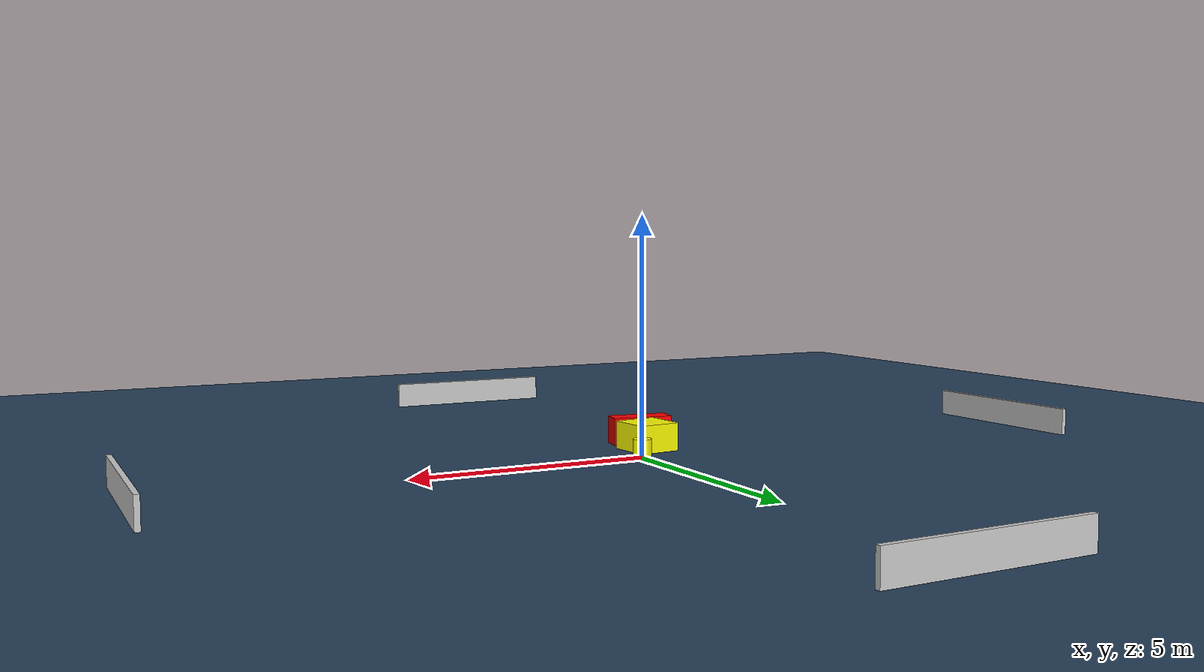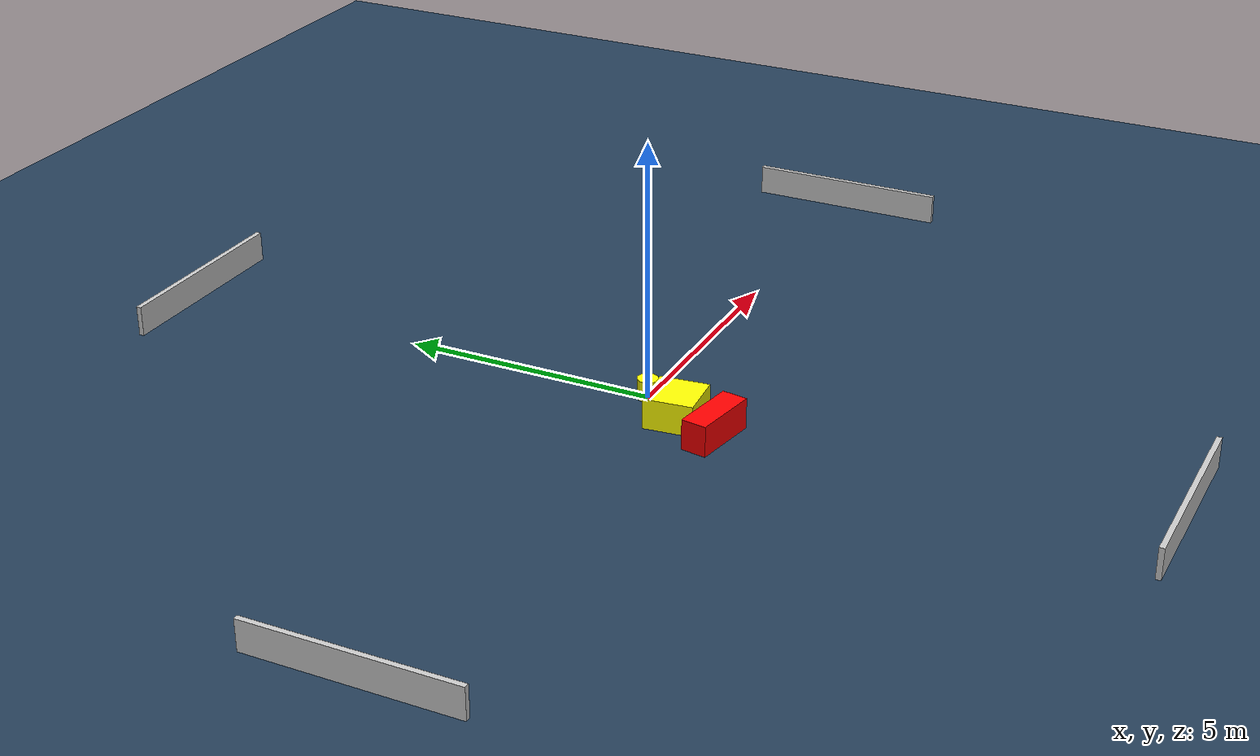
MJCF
<?xml version="1.0" ?>
<mujoco model="generated_environment">
  <option timestep="0.01" integrator="RK4" cone="elliptic"/>
  <default>
    <geom density="1"/>
  </default>
  <asset>
    <texture builtin="gradient" height="3072" name="skybox" rgb1="0.3 0.5 0.7" rgb2="0 0 0" type="skybox" width="512"/>
    <texture builtin="checker" height="300" name="groundplane" rgb1="0.2 0.3 0.4" rgb2="0.1 0.2 0.3" type="2d" width="300"/>
    <material name="groundplane" reflectance="0.2" texrepeat="5 5" texture="groundplane"/>
  </asset>
  <worldbody>
    <light dir="0 0 -1" directional="true" pos="0 0 1.5"/>
    <geom condim="3" friction="0.5 0.005 0.001" material="groundplane" name="floor" pos="0 0 0" size="0 0 0.05" type="plane"/>
    <body name="walls">
      <geom name="wall_1" condim="4" pos="-10.0 0.0 0.3" rgba="0.800000011920929 0.800000011920929 0.800000011920929 1.0" size="0.05 2.0 0.3" type="box"/>
      <geom name="wall_2" condim="4" pos="10.0 0.0 0.3" rgba="0.800000011920929 0.800000011920929 0.800000011920929 1.0" size="0.05 2.0 0.3" type="box"/>
      <geom name="wall_3" condim="4" pos="0.0 -10.0 0.3" rgba="0.800000011920929 0.800000011920929 0.800000011920929 1.0" size="2.0 0.05 0.3" type="box"/>
      <geom name="wall_4" condim="4" pos="0.0 10.0 0.3" rgba="0.800000011920929 0.800000011920929 0.800000011920929 1.0" size="2.0 0.05 0.3" type="box"/>
    </body>
    <body name="robot">
      <joint name="joint_x" type="slide" pos="0 0 0" axis="1 0 0"/>
      <joint name="joint_y" type="slide" pos="0 0 0" axis="0 1 0"/>
      <geom name="robot" type="cylinder" pos="0.0 0.0 0.2" size="0.2 0.2 0.0" mass="5.0" friction="1.0 0.005 0.0001" condim="4" rgba="1.0 1.0 0.0 1.0"/>
    </body>
    <body name="obstacle_1_movable">
      <geom name="obstacle_1_movable" condim="4" pos="-0.590108367028455 -0.8592082009906153 0.3" euler="0 0 5.585822359415142" friction="0.0 0.005 0.001" rgba="1.0 1.0 0.0 1.0" size="0.4735222166850585 0.4789417654364233 0.3" type="box" mass="0.1"/>
      <joint type="free"/>
    </body>
    <body name="obstacle_2_static">
      <geom name="obstacle_2_static" condim="4" pos="-0.8869128262963726 -1.7426663823514088 0.3" euler="0 0 260.4984084893954" friction="0.0 0.005 0.001" rgba="1.0 0.0 0.0 1.0" size="0.2511296422506171 0.6588311961655728 0.3" type="box"/>
    </body>
  </worldbody>
  <actuator>
    <motor name="actuator_x" joint="joint_x" gear="1" ctrlrange="-1 1"/>
    <motor name="actuator_y" joint="joint_y" gear="1" ctrlrange="-1 1"/>
  </actuator>
</mujoco>
